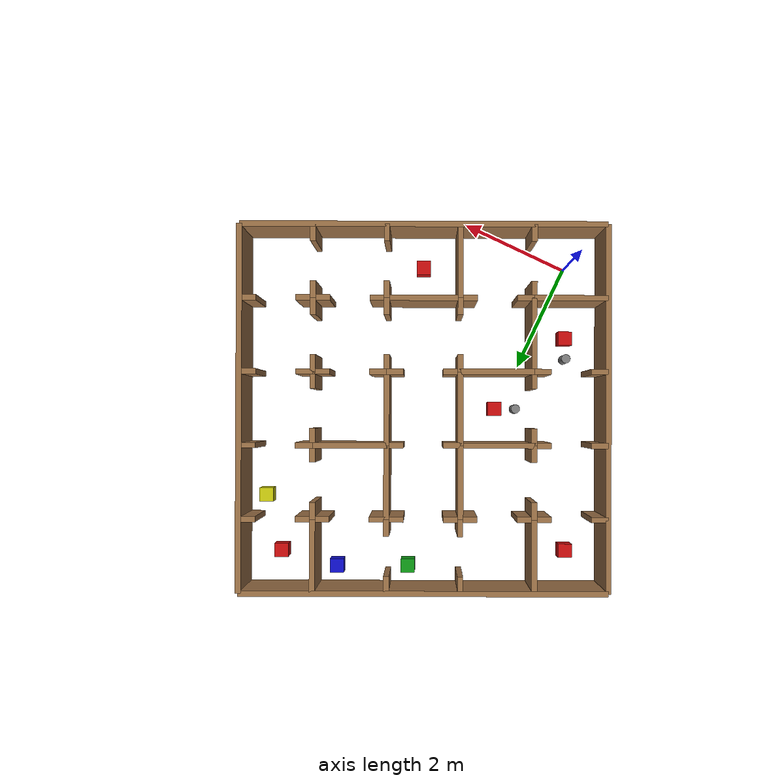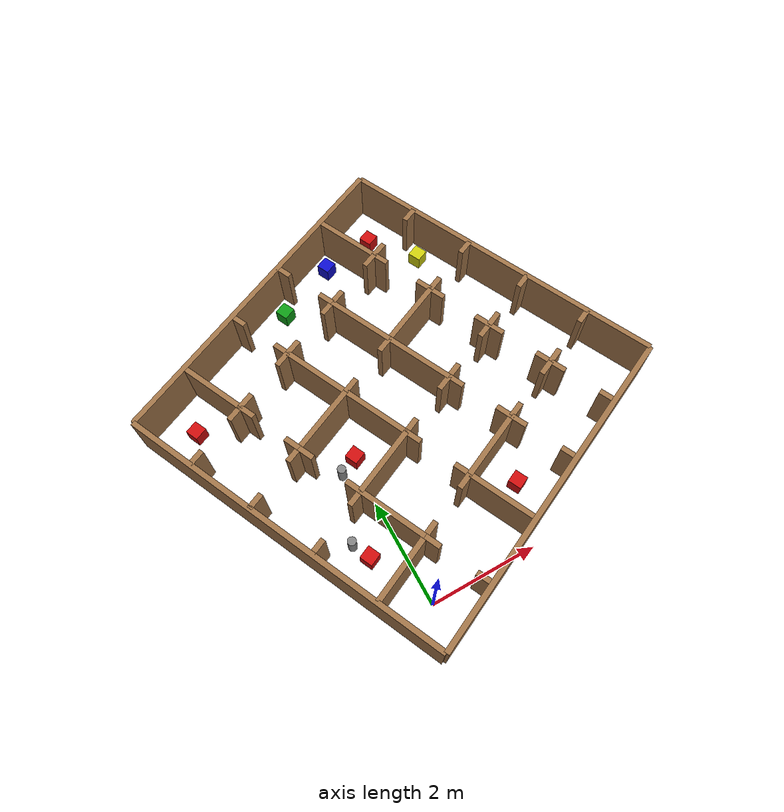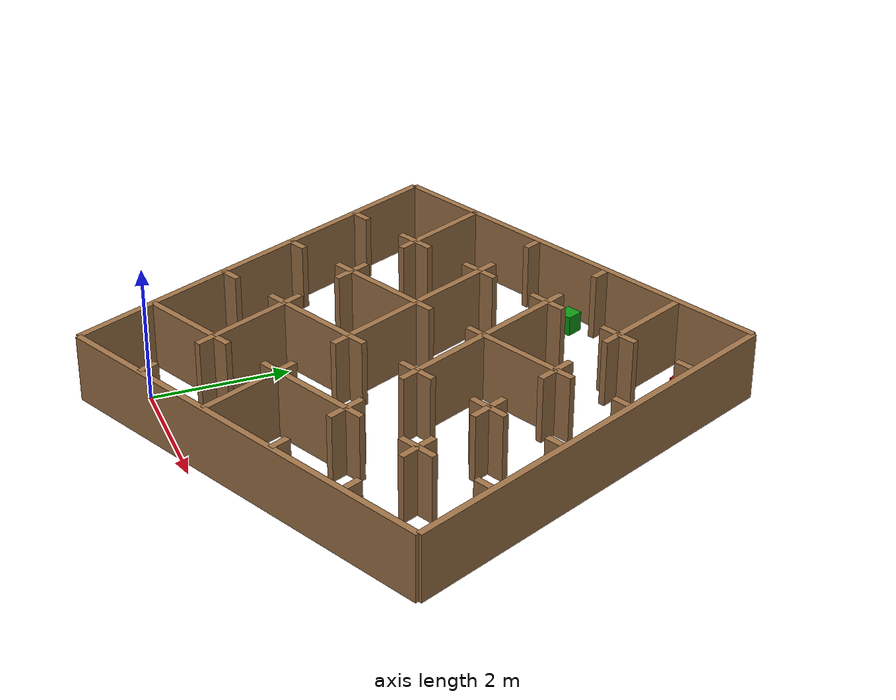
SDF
<sdf version="1.5">
 <world name="tars_nuevo_diagonales">
  <physics type="ode">
   <max_step_size>0.001</max_step_size>
   <real_time_factor>1</real_time_factor>
   <real_time_update_rate>1000</real_time_update_rate>
   <gravity>0 0 -9.8</gravity>
  </physics>
  <plugin filename="gz-sim-physics-system" name="gz::sim::systems::Physics"/>
  <plugin filename="gz-sim-user-commands-system" name="gz::sim::systems::UserCommands"/>
  <plugin filename="gz-sim-scene-broadcaster-system" name="gz::sim::systems::SceneBroadcaster"/>
  <plugin filename="gz-sim-contact-system" name="gz::sim::systems::Contact"/>
  <plugin filename="gz-sim-sensors-system" name="gz::sim::systems::Sensors">
   <render_engine>ogre2</render_engine>
  </plugin>
  <plugin filename="gz-sim-imu-system" name="gz::sim::systems::Imu"/>
  <scene>
   <shadows>false</shadows>
   <ambient>0.2 0.2 0.2 1</ambient>
   <background>1 1 1 1</background>
   <grid>false</grid>
   <origin_visual>false</origin_visual>
  </scene>
  <include><uri>model://sun</uri></include>
  <light name="camera_spot_1_light" type="spot">
   <pose>-6 4 4 0 -1 -0.8</pose>
   <diffuse>0.5 0.5 0.5 1</diffuse>
   <specular>0.1 0.1 0.1 1</specular>
   <direction>0 0 -1</direction>
   <attenuation>
    <range>20</range>
    <constant>0.2</constant>
    <linear>0.01</linear>
    <quadratic>0.001</quadratic>
   </attenuation>
   <cast_shadows>0</cast_shadows>
   <spot><inner_angle>0.6</inner_angle><outer_angle>1</outer_angle><falloff>1</falloff></spot>
  </light>
  <light name="camera_spot_2_light" type="spot">
   <pose>5 -3 4 0 0.8 -0.6</pose>
   <diffuse>0.5 0.5 0.5 1</diffuse>
   <specular>0.1 0.1 0.1 1</specular>
   <direction>0 0 -1</direction>
   <attenuation>
    <range>20</range>
    <constant>0.3</constant>
    <linear>0.01</linear>
    <quadratic>0.001</quadratic>
   </attenuation>
   <cast_shadows>0</cast_shadows>
   <spot><inner_angle>0.6</inner_angle><outer_angle>1</outer_angle><falloff>1</falloff></spot>
  </light>
  <model name="paredes_nuevas">
   <static>true</static>
   <link name="pared_1">
    <pose>2.631102 0.509707 0.5 0.0 0.0 0.436332313</pose>
    <collision name="collision"><geometry><box><size>6.500000000000001 0.1 1.0</size></box></geometry></collision>
    <visual name="visual">
     <geometry><box><size>6.500000000000001 0.1 1.0</size></box></geometry>
     <material><ambient>0.62 0.45 0.28 1</ambient><diffuse>0.62 0.45 0.28 1</diffuse></material>
    </visual>
   </link>
   <link name="pared_2">
    <pose>4.203093 4.828717 0.5 0.0 0.0 2.007128640</pose>
    <collision name="collision"><geometry><box><size>6.500000000000001 0.1 1.0</size></box></geometry></collision>
    <visual name="visual">
     <geometry><box><size>6.500000000000001 0.1 1.0</size></box></geometry>
     <material><ambient>0.62 0.45 0.28 1</ambient><diffuse>0.62 0.45 0.28 1</diffuse></material>
    </visual>
   </link>
   <link name="pared_3">
    <pose>-0.115917 6.400708 0.5 0.0 0.0 3.577924967</pose>
    <collision name="collision"><geometry><box><size>6.500000000000001 0.1 1.0</size></box></geometry></collision>
    <visual name="visual">
     <geometry><box><size>6.500000000000001 0.1 1.0</size></box></geometry>
     <material><ambient>0.62 0.45 0.28 1</ambient><diffuse>0.62 0.45 0.28 1</diffuse></material>
    </visual>
   </link>
   <link name="pared_4">
    <pose>-1.687908 2.081698 0.5 0.0 0.0 -1.134464014</pose>
    <collision name="collision"><geometry><box><size>6.500000000000001 0.1 1.0</size></box></geometry></collision>
    <visual name="visual">
     <geometry><box><size>6.500000000000001 0.1 1.0</size></box></geometry>
     <material><ambient>0.62 0.45 0.28 1</ambient><diffuse>0.62 0.45 0.28 1</diffuse></material>
    </visual>
   </link>
   <link name="pared_5">
    <pose>0.800409 -0.178452 0.5 0.0 0.0 2.007128640</pose>
    <collision name="collision">
     <geometry><box><size>0.30000000000000004 0.1 1.0</size></box></geometry>
    </collision>
    <visual name="visual">
     <geometry><box><size>0.30000000000000004 0.1 1.0</size></box></geometry>
     <material><ambient>0.62 0.45 0.28 1</ambient><diffuse>0.62 0.45 0.28 1</diffuse></material>
    </visual>
   </link>
   <link name="pared_6">
    <pose>0.377791 0.727856 0.5 0.0 0.0 2.007128640</pose>
    <collision name="collision">
     <geometry><box><size>0.30000000000000004 0.1 1.0</size></box></geometry>
    </collision>
    <visual name="visual">
     <geometry><box><size>0.30000000000000004 0.1 1.0</size></box></geometry>
     <material><ambient>0.62 0.45 0.28 1</ambient><diffuse>0.62 0.45 0.28 1</diffuse></material>
    </visual>
   </link>
   <link name="pared_7">
    <pose>-0.274702 0.589100 0.5 0.0 0.0 0.436332313</pose>
    <collision name="collision"><geometry><box><size>1.3 0.1 1.0</size></box></geometry></collision>
    <visual name="visual">
     <geometry><box><size>1.3 0.1 1.0</size></box></geometry>
     <material><ambient>0.62 0.45 0.28 1</ambient><diffuse>0.62 0.45 0.28 1</diffuse></material>
    </visual>
   </link>
   <link name="pared_8">
    <pose>0.039696 1.452902 0.5 0.0 0.0 2.007128640</pose>
    <collision name="collision">
     <geometry><box><size>1.3000000000000003 0.1 1.0</size></box></geometry>
    </collision>
    <visual name="visual">
     <geometry><box><size>1.3000000000000003 0.1 1.0</size></box></geometry>
     <material><ambient>0.62 0.45 0.28 1</ambient><diffuse>0.62 0.45 0.28 1</diffuse></material>
    </visual>
   </link>
   <link name="pared_9">
    <pose>-1.277260 1.555991 0.5 0.0 0.0 0.436332313</pose>
    <collision name="collision">
     <geometry><box><size>0.30000000000000004 0.1 1.0</size></box></geometry>
    </collision>
    <visual name="visual">
     <geometry><box><size>0.30000000000000004 0.1 1.0</size></box></geometry>
     <material><ambient>0.62 0.45 0.28 1</ambient><diffuse>0.62 0.45 0.28 1</diffuse></material>
    </visual>
   </link>
   <link name="pared_10">
    <pose>-0.370952 1.978609 0.5 0.0 0.0 0.436332313</pose>
    <collision name="collision">
     <geometry><box><size>0.30000000000000004 0.1 1.0</size></box></geometry>
    </collision>
    <visual name="visual">
     <geometry><box><size>0.30000000000000004 0.1 1.0</size></box></geometry>
     <material><ambient>0.62 0.45 0.28 1</ambient><diffuse>0.62 0.45 0.28 1</diffuse></material>
    </visual>
   </link>
   <link name="pared_11">
    <pose>-0.298398 2.177948 0.5 0.0 0.0 2.007128640</pose>
    <collision name="collision">
     <geometry><box><size>0.2999999999999998 0.1 1.0</size></box></geometry>
    </collision>
    <visual name="visual">
     <geometry><box><size>0.2999999999999998 0.1 1.0</size></box></geometry>
     <material><ambient>0.62 0.45 0.28 1</ambient><diffuse>0.62 0.45 0.28 1</diffuse></material>
    </visual>
   </link>
   <link name="pared_12">
    <pose>-0.721017 3.084256 0.5 0.0 0.0 2.007128640</pose>
    <collision name="collision">
     <geometry><box><size>0.2999999999999998 0.1 1.0</size></box></geometry>
    </collision>
    <visual name="visual">
     <geometry><box><size>0.2999999999999998 0.1 1.0</size></box></geometry>
     <material><ambient>0.62 0.45 0.28 1</ambient><diffuse>0.62 0.45 0.28 1</diffuse></material>
    </visual>
   </link>
   <link name="pared_13">
    <pose>-1.826663 2.734191 0.5 0.0 0.0 0.436332313</pose>
    <collision name="collision">
     <geometry><box><size>0.30000000000000004 0.1 1.0</size></box></geometry>
    </collision>
    <visual name="visual">
     <geometry><box><size>0.30000000000000004 0.1 1.0</size></box></geometry>
     <material><ambient>0.62 0.45 0.28 1</ambient><diffuse>0.62 0.45 0.28 1</diffuse></material>
    </visual>
   </link>
   <link name="pared_14">
    <pose>-0.920355 3.156809 0.5 0.0 0.0 0.436332313</pose>
    <collision name="collision">
     <geometry><box><size>0.30000000000000004 0.1 1.0</size></box></geometry>
    </collision>
    <visual name="visual">
     <geometry><box><size>0.30000000000000004 0.1 1.0</size></box></geometry>
     <material><ambient>0.62 0.45 0.28 1</ambient><diffuse>0.62 0.45 0.28 1</diffuse></material>
    </visual>
   </link>
   <link name="pared_15">
    <pose>-0.847802 3.356148 0.5 0.0 0.0 2.007128640</pose>
    <collision name="collision">
     <geometry><box><size>0.2999999999999998 0.1 1.0</size></box></geometry>
    </collision>
    <visual name="visual">
     <geometry><box><size>0.2999999999999998 0.1 1.0</size></box></geometry>
     <material><ambient>0.62 0.45 0.28 1</ambient><diffuse>0.62 0.45 0.28 1</diffuse></material>
    </visual>
   </link>
   <link name="pared_16">
    <pose>-1.270420 4.262456 0.5 0.0 0.0 2.007128640</pose>
    <collision name="collision">
     <geometry><box><size>0.3000000000000007 0.1 1.0</size></box></geometry>
    </collision>
    <visual name="visual">
     <geometry><box><size>0.3000000000000007 0.1 1.0</size></box></geometry>
     <material><ambient>0.62 0.45 0.28 1</ambient><diffuse>0.62 0.45 0.28 1</diffuse></material>
    </visual>
   </link>
   <link name="pared_17">
    <pose>-2.376067 3.912391 0.5 0.0 0.0 0.436332313</pose>
    <collision name="collision">
     <geometry><box><size>0.30000000000000004 0.1 1.0</size></box></geometry>
    </collision>
    <visual name="visual">
     <geometry><box><size>0.30000000000000004 0.1 1.0</size></box></geometry>
     <material><ambient>0.62 0.45 0.28 1</ambient><diffuse>0.62 0.45 0.28 1</diffuse></material>
    </visual>
   </link>
   <link name="pared_18">
    <pose>-1.469759 4.335010 0.5 0.0 0.0 0.436332313</pose>
    <collision name="collision">
     <geometry><box><size>0.30000000000000004 0.1 1.0</size></box></geometry>
    </collision>
    <visual name="visual">
     <geometry><box><size>0.30000000000000004 0.1 1.0</size></box></geometry>
     <material><ambient>0.62 0.45 0.28 1</ambient><diffuse>0.62 0.45 0.28 1</diffuse></material>
    </visual>
   </link>
   <link name="pared_19">
    <pose>-1.608515 4.987502 0.5 0.0 0.0 2.007128640</pose>
    <collision name="collision">
     <geometry><box><size>1.3000000000000007 0.1 1.0</size></box></geometry>
    </collision>
    <visual name="visual">
     <geometry><box><size>1.3000000000000007 0.1 1.0</size></box></geometry>
     <material><ambient>0.62 0.45 0.28 1</ambient><diffuse>0.62 0.45 0.28 1</diffuse></material>
    </visual>
   </link>
   <link name="pared_20">
    <pose>1.767300 0.824106 0.5 0.0 0.0 2.007128640</pose>
    <collision name="collision"><geometry><box><size>1.3 0.1 1.0</size></box></geometry></collision>
    <visual name="visual">
     <geometry><box><size>1.3 0.1 1.0</size></box></geometry>
     <material><ambient>0.62 0.45 0.28 1</ambient><diffuse>0.62 0.45 0.28 1</diffuse></material>
    </visual>
   </link>
   <link name="pared_21">
    <pose>0.450344 0.927195 0.5 0.0 0.0 0.436332313</pose>
    <collision name="collision">
     <geometry><box><size>0.30000000000000004 0.1 1.0</size></box></geometry>
    </collision>
    <visual name="visual">
     <geometry><box><size>0.30000000000000004 0.1 1.0</size></box></geometry>
     <material><ambient>0.62 0.45 0.28 1</ambient><diffuse>0.62 0.45 0.28 1</diffuse></material>
    </visual>
   </link>
   <link name="pared_22">
    <pose>1.356652 1.349813 0.5 0.0 0.0 0.436332313</pose>
    <collision name="collision">
     <geometry><box><size>0.30000000000000027 0.1 1.0</size></box></geometry>
    </collision>
    <visual name="visual">
     <geometry><box><size>0.30000000000000027 0.1 1.0</size></box></geometry>
     <material><ambient>0.62 0.45 0.28 1</ambient><diffuse>0.62 0.45 0.28 1</diffuse></material>
    </visual>
   </link>
   <link name="pared_23">
    <pose>1.429206 1.549152 0.5 0.0 0.0 2.007128640</pose>
    <collision name="collision">
     <geometry><box><size>0.30000000000000004 0.1 1.0</size></box></geometry>
    </collision>
    <visual name="visual">
     <geometry><box><size>0.30000000000000004 0.1 1.0</size></box></geometry>
     <material><ambient>0.62 0.45 0.28 1</ambient><diffuse>0.62 0.45 0.28 1</diffuse></material>
    </visual>
   </link>
   <link name="pared_24">
    <pose>1.006587 2.455460 0.5 0.0 0.0 2.007128640</pose>
    <collision name="collision">
     <geometry><box><size>0.30000000000000027 0.1 1.0</size></box></geometry>
    </collision>
    <visual name="visual">
     <geometry><box><size>0.30000000000000027 0.1 1.0</size></box></geometry>
     <material><ambient>0.62 0.45 0.28 1</ambient><diffuse>0.62 0.45 0.28 1</diffuse></material>
    </visual>
   </link>
   <link name="pared_25">
    <pose>0.354095 2.316704 0.5 0.0 0.0 0.436332313</pose>
    <collision name="collision">
     <geometry><box><size>1.3000000000000003 0.1 1.0</size></box></geometry>
    </collision>
    <visual name="visual">
     <geometry><box><size>1.3000000000000003 0.1 1.0</size></box></geometry>
     <material><ambient>0.62 0.45 0.28 1</ambient><diffuse>0.62 0.45 0.28 1</diffuse></material>
    </visual>
   </link>
   <link name="pared_26">
    <pose>0.668493 3.180506 0.5 0.0 0.0 2.007128640</pose>
    <collision name="collision">
     <geometry><box><size>1.2999999999999998 0.1 1.0</size></box></geometry>
    </collision>
    <visual name="visual">
     <geometry><box><size>1.2999999999999998 0.1 1.0</size></box></geometry>
     <material><ambient>0.62 0.45 0.28 1</ambient><diffuse>0.62 0.45 0.28 1</diffuse></material>
    </visual>
   </link>
   <link name="pared_27">
    <pose>-0.195309 3.494904 0.5 0.0 0.0 0.436332313</pose>
    <collision name="collision">
     <geometry><box><size>1.3000000000000003 0.1 1.0</size></box></geometry>
    </collision>
    <visual name="visual">
     <geometry><box><size>1.3000000000000003 0.1 1.0</size></box></geometry>
     <material><ambient>0.62 0.45 0.28 1</ambient><diffuse>0.62 0.45 0.28 1</diffuse></material>
    </visual>
   </link>
   <link name="pared_28">
    <pose>0.119089 4.358706 0.5 0.0 0.0 2.007128640</pose>
    <collision name="collision">
     <geometry><box><size>1.3000000000000003 0.1 1.0</size></box></geometry>
    </collision>
    <visual name="visual">
     <geometry><box><size>1.3000000000000003 0.1 1.0</size></box></geometry>
     <material><ambient>0.62 0.45 0.28 1</ambient><diffuse>0.62 0.45 0.28 1</diffuse></material>
    </visual>
   </link>
   <link name="pared_29">
    <pose>-1.197867 4.461795 0.5 0.0 0.0 0.436332313</pose>
    <collision name="collision">
     <geometry><box><size>0.30000000000000004 0.1 1.0</size></box></geometry>
    </collision>
    <visual name="visual">
     <geometry><box><size>0.30000000000000004 0.1 1.0</size></box></geometry>
     <material><ambient>0.62 0.45 0.28 1</ambient><diffuse>0.62 0.45 0.28 1</diffuse></material>
    </visual>
   </link>
   <link name="pared_30">
    <pose>-0.291559 4.884413 0.5 0.0 0.0 0.436332313</pose>
    <collision name="collision">
     <geometry><box><size>0.30000000000000027 0.1 1.0</size></box></geometry>
    </collision>
    <visual name="visual">
     <geometry><box><size>0.30000000000000027 0.1 1.0</size></box></geometry>
     <material><ambient>0.62 0.45 0.28 1</ambient><diffuse>0.62 0.45 0.28 1</diffuse></material>
    </visual>
   </link>
   <link name="pared_31">
    <pose>-0.219006 5.083752 0.5 0.0 0.0 2.007128640</pose>
    <collision name="collision">
     <geometry><box><size>0.3000000000000007 0.1 1.0</size></box></geometry>
    </collision>
    <visual name="visual">
     <geometry><box><size>0.3000000000000007 0.1 1.0</size></box></geometry>
     <material><ambient>0.62 0.45 0.28 1</ambient><diffuse>0.62 0.45 0.28 1</diffuse></material>
    </visual>
   </link>
   <link name="pared_32">
    <pose>-0.641624 5.990060 0.5 0.0 0.0 2.007128640</pose>
    <collision name="collision">
     <geometry><box><size>0.3000000000000007 0.1 1.0</size></box></geometry>
    </collision>
    <visual name="visual">
     <geometry><box><size>0.3000000000000007 0.1 1.0</size></box></geometry>
     <material><ambient>0.62 0.45 0.28 1</ambient><diffuse>0.62 0.45 0.28 1</diffuse></material>
    </visual>
   </link>
   <link name="pared_33">
    <pose>3.156809 0.920355 0.5 0.0 0.0 2.007128640</pose>
    <collision name="collision">
     <geometry><box><size>0.30000000000000004 0.1 1.0</size></box></geometry>
    </collision>
    <visual name="visual">
     <geometry><box><size>0.30000000000000004 0.1 1.0</size></box></geometry>
     <material><ambient>0.62 0.45 0.28 1</ambient><diffuse>0.62 0.45 0.28 1</diffuse></material>
    </visual>
   </link>
   <link name="pared_34">
    <pose>2.734191 1.826663 0.5 0.0 0.0 2.007128640</pose>
    <collision name="collision">
     <geometry><box><size>0.30000000000000004 0.1 1.0</size></box></geometry>
    </collision>
    <visual name="visual">
     <geometry><box><size>0.30000000000000004 0.1 1.0</size></box></geometry>
     <material><ambient>0.62 0.45 0.28 1</ambient><diffuse>0.62 0.45 0.28 1</diffuse></material>
    </visual>
   </link>
   <link name="pared_35">
    <pose>2.081698 1.687908 0.5 0.0 0.0 0.436332313</pose>
    <collision name="collision">
     <geometry><box><size>1.2999999999999998 0.1 1.0</size></box></geometry>
    </collision>
    <visual name="visual">
     <geometry><box><size>1.2999999999999998 0.1 1.0</size></box></geometry>
     <material><ambient>0.62 0.45 0.28 1</ambient><diffuse>0.62 0.45 0.28 1</diffuse></material>
    </visual>
   </link>
   <link name="pared_36">
    <pose>2.607406 2.098556 0.5 0.0 0.0 2.007128640</pose>
    <collision name="collision">
     <geometry><box><size>0.30000000000000004 0.1 1.0</size></box></geometry>
    </collision>
    <visual name="visual">
     <geometry><box><size>0.30000000000000004 0.1 1.0</size></box></geometry>
     <material><ambient>0.62 0.45 0.28 1</ambient><diffuse>0.62 0.45 0.28 1</diffuse></material>
    </visual>
   </link>
   <link name="pared_37">
    <pose>2.184787 3.004863 0.5 0.0 0.0 2.007128640</pose>
    <collision name="collision">
     <geometry><box><size>0.30000000000000027 0.1 1.0</size></box></geometry>
    </collision>
    <visual name="visual">
     <geometry><box><size>0.30000000000000027 0.1 1.0</size></box></geometry>
     <material><ambient>0.62 0.45 0.28 1</ambient><diffuse>0.62 0.45 0.28 1</diffuse></material>
    </visual>
   </link>
   <link name="pared_38">
    <pose>1.079141 2.654799 0.5 0.0 0.0 0.436332313</pose>
    <collision name="collision">
     <geometry><box><size>0.2999999999999998 0.1 1.0</size></box></geometry>
    </collision>
    <visual name="visual">
     <geometry><box><size>0.2999999999999998 0.1 1.0</size></box></geometry>
     <material><ambient>0.62 0.45 0.28 1</ambient><diffuse>0.62 0.45 0.28 1</diffuse></material>
    </visual>
   </link>
   <link name="pared_39">
    <pose>1.985449 3.077417 0.5 0.0 0.0 0.436332313</pose>
    <collision name="collision">
     <geometry><box><size>0.2999999999999998 0.1 1.0</size></box></geometry>
    </collision>
    <visual name="visual">
     <geometry><box><size>0.2999999999999998 0.1 1.0</size></box></geometry>
     <material><ambient>0.62 0.45 0.28 1</ambient><diffuse>0.62 0.45 0.28 1</diffuse></material>
    </visual>
   </link>
   <link name="pared_40">
    <pose>1.846693 3.729910 0.5 0.0 0.0 2.007128640</pose>
    <collision name="collision">
     <geometry><box><size>1.2999999999999998 0.1 1.0</size></box></geometry>
    </collision>
    <visual name="visual">
     <geometry><box><size>1.2999999999999998 0.1 1.0</size></box></geometry>
     <material><ambient>0.62 0.45 0.28 1</ambient><diffuse>0.62 0.45 0.28 1</diffuse></material>
    </visual>
   </link>
   <link name="pared_41">
    <pose>0.529737 3.832999 0.5 0.0 0.0 0.436332313</pose>
    <collision name="collision">
     <geometry><box><size>0.2999999999999998 0.1 1.0</size></box></geometry>
    </collision>
    <visual name="visual">
     <geometry><box><size>0.2999999999999998 0.1 1.0</size></box></geometry>
     <material><ambient>0.62 0.45 0.28 1</ambient><diffuse>0.62 0.45 0.28 1</diffuse></material>
    </visual>
   </link>
   <link name="pared_42">
    <pose>1.436045 4.255617 0.5 0.0 0.0 0.436332313</pose>
    <collision name="collision">
     <geometry><box><size>0.2999999999999998 0.1 1.0</size></box></geometry>
    </collision>
    <visual name="visual">
     <geometry><box><size>0.2999999999999998 0.1 1.0</size></box></geometry>
     <material><ambient>0.62 0.45 0.28 1</ambient><diffuse>0.62 0.45 0.28 1</diffuse></material>
    </visual>
   </link>
   <link name="pared_43">
    <pose>1.297289 4.908110 0.5 0.0 0.0 2.007128640</pose>
    <collision name="collision">
     <geometry><box><size>1.3000000000000003 0.1 1.0</size></box></geometry>
    </collision>
    <visual name="visual">
     <geometry><box><size>1.3000000000000003 0.1 1.0</size></box></geometry>
     <material><ambient>0.62 0.45 0.28 1</ambient><diffuse>0.62 0.45 0.28 1</diffuse></material>
    </visual>
   </link>
   <link name="pared_44">
    <pose>-0.019667 5.011199 0.5 0.0 0.0 0.436332313</pose>
    <collision name="collision">
     <geometry><box><size>0.2999999999999998 0.1 1.0</size></box></geometry>
    </collision>
    <visual name="visual">
     <geometry><box><size>0.2999999999999998 0.1 1.0</size></box></geometry>
     <material><ambient>0.62 0.45 0.28 1</ambient><diffuse>0.62 0.45 0.28 1</diffuse></material>
    </visual>
   </link>
   <link name="pared_45">
    <pose>0.886641 5.433817 0.5 0.0 0.0 0.436332313</pose>
    <collision name="collision">
     <geometry><box><size>0.2999999999999998 0.1 1.0</size></box></geometry>
    </collision>
    <visual name="visual">
     <geometry><box><size>0.2999999999999998 0.1 1.0</size></box></geometry>
     <material><ambient>0.62 0.45 0.28 1</ambient><diffuse>0.62 0.45 0.28 1</diffuse></material>
    </visual>
   </link>
   <link name="pared_46">
    <pose>0.959194 5.633156 0.5 0.0 0.0 2.007128640</pose>
    <collision name="collision">
     <geometry><box><size>0.3000000000000007 0.1 1.0</size></box></geometry>
    </collision>
    <visual name="visual">
     <geometry><box><size>0.3000000000000007 0.1 1.0</size></box></geometry>
     <material><ambient>0.62 0.45 0.28 1</ambient><diffuse>0.62 0.45 0.28 1</diffuse></material>
    </visual>
   </link>
   <link name="pared_47">
    <pose>0.536576 6.539464 0.5 0.0 0.0 2.007128640</pose>
    <collision name="collision">
     <geometry><box><size>0.3000000000000007 0.1 1.0</size></box></geometry>
    </collision>
    <visual name="visual">
     <geometry><box><size>0.3000000000000007 0.1 1.0</size></box></geometry>
     <material><ambient>0.62 0.45 0.28 1</ambient><diffuse>0.62 0.45 0.28 1</diffuse></material>
    </visual>
   </link>
   <link name="pared_48">
    <pose>4.335010 1.469759 0.5 0.0 0.0 2.007128640</pose>
    <collision name="collision">
     <geometry><box><size>0.30000000000000004 0.1 1.0</size></box></geometry>
    </collision>
    <visual name="visual">
     <geometry><box><size>0.30000000000000004 0.1 1.0</size></box></geometry>
     <material><ambient>0.62 0.45 0.28 1</ambient><diffuse>0.62 0.45 0.28 1</diffuse></material>
    </visual>
   </link>
   <link name="pared_49">
    <pose>3.912391 2.376067 0.5 0.0 0.0 2.007128640</pose>
    <collision name="collision">
     <geometry><box><size>0.30000000000000004 0.1 1.0</size></box></geometry>
    </collision>
    <visual name="visual">
     <geometry><box><size>0.30000000000000004 0.1 1.0</size></box></geometry>
     <material><ambient>0.62 0.45 0.28 1</ambient><diffuse>0.62 0.45 0.28 1</diffuse></material>
    </visual>
   </link>
   <link name="pared_50">
    <pose>2.806745 2.026002 0.5 0.0 0.0 0.436332313</pose>
    <collision name="collision">
     <geometry><box><size>0.2999999999999998 0.1 1.0</size></box></geometry>
    </collision>
    <visual name="visual">
     <geometry><box><size>0.2999999999999998 0.1 1.0</size></box></geometry>
     <material><ambient>0.62 0.45 0.28 1</ambient><diffuse>0.62 0.45 0.28 1</diffuse></material>
    </visual>
   </link>
   <link name="pared_51">
    <pose>3.713052 2.448620 0.5 0.0 0.0 0.436332313</pose>
    <collision name="collision">
     <geometry><box><size>0.3000000000000007 0.1 1.0</size></box></geometry>
    </collision>
    <visual name="visual">
     <geometry><box><size>0.3000000000000007 0.1 1.0</size></box></geometry>
     <material><ambient>0.62 0.45 0.28 1</ambient><diffuse>0.62 0.45 0.28 1</diffuse></material>
    </visual>
   </link>
   <link name="pared_52">
    <pose>3.785606 2.647959 0.5 0.0 0.0 2.007128640</pose>
    <collision name="collision">
     <geometry><box><size>0.30000000000000004 0.1 1.0</size></box></geometry>
    </collision>
    <visual name="visual">
     <geometry><box><size>0.30000000000000004 0.1 1.0</size></box></geometry>
     <material><ambient>0.62 0.45 0.28 1</ambient><diffuse>0.62 0.45 0.28 1</diffuse></material>
    </visual>
   </link>
   <link name="pared_53">
    <pose>3.362988 3.554267 0.5 0.0 0.0 2.007128640</pose>
    <collision name="collision">
     <geometry><box><size>0.30000000000000027 0.1 1.0</size></box></geometry>
    </collision>
    <visual name="visual">
     <geometry><box><size>0.30000000000000027 0.1 1.0</size></box></geometry>
     <material><ambient>0.62 0.45 0.28 1</ambient><diffuse>0.62 0.45 0.28 1</diffuse></material>
    </visual>
   </link>
   <link name="pared_54">
    <pose>2.257341 3.204202 0.5 0.0 0.0 0.436332313</pose>
    <collision name="collision">
     <geometry><box><size>0.2999999999999998 0.1 1.0</size></box></geometry>
    </collision>
    <visual name="visual">
     <geometry><box><size>0.2999999999999998 0.1 1.0</size></box></geometry>
     <material><ambient>0.62 0.45 0.28 1</ambient><diffuse>0.62 0.45 0.28 1</diffuse></material>
    </visual>
   </link>
   <link name="pared_55">
    <pose>3.163649 3.626821 0.5 0.0 0.0 0.436332313</pose>
    <collision name="collision">
     <geometry><box><size>0.3000000000000007 0.1 1.0</size></box></geometry>
    </collision>
    <visual name="visual">
     <geometry><box><size>0.3000000000000007 0.1 1.0</size></box></geometry>
     <material><ambient>0.62 0.45 0.28 1</ambient><diffuse>0.62 0.45 0.28 1</diffuse></material>
    </visual>
   </link>
   <link name="pared_56">
    <pose>3.236202 3.826159 0.5 0.0 0.0 2.007128640</pose>
    <collision name="collision">
     <geometry><box><size>0.2999999999999998 0.1 1.0</size></box></geometry>
    </collision>
    <visual name="visual">
     <geometry><box><size>0.2999999999999998 0.1 1.0</size></box></geometry>
     <material><ambient>0.62 0.45 0.28 1</ambient><diffuse>0.62 0.45 0.28 1</diffuse></material>
    </visual>
   </link>
   <link name="pared_57">
    <pose>2.813584 4.732467 0.5 0.0 0.0 2.007128640</pose>
    <collision name="collision">
     <geometry><box><size>0.2999999999999998 0.1 1.0</size></box></geometry>
    </collision>
    <visual name="visual">
     <geometry><box><size>0.2999999999999998 0.1 1.0</size></box></geometry>
     <material><ambient>0.62 0.45 0.28 1</ambient><diffuse>0.62 0.45 0.28 1</diffuse></material>
    </visual>
   </link>
   <link name="pared_58">
    <pose>2.161091 4.593712 0.5 0.0 0.0 0.436332313</pose>
    <collision name="collision">
     <geometry><box><size>1.3000000000000003 0.1 1.0</size></box></geometry>
    </collision>
    <visual name="visual">
     <geometry><box><size>1.3000000000000003 0.1 1.0</size></box></geometry>
     <material><ambient>0.62 0.45 0.28 1</ambient><diffuse>0.62 0.45 0.28 1</diffuse></material>
    </visual>
   </link>
   <link name="pared_59">
    <pose>2.686798 5.004360 0.5 0.0 0.0 2.007128640</pose>
    <collision name="collision">
     <geometry><box><size>0.2999999999999998 0.1 1.0</size></box></geometry>
    </collision>
    <visual name="visual">
     <geometry><box><size>0.2999999999999998 0.1 1.0</size></box></geometry>
     <material><ambient>0.62 0.45 0.28 1</ambient><diffuse>0.62 0.45 0.28 1</diffuse></material>
    </visual>
   </link>
   <link name="pared_60">
    <pose>2.264180 5.910667 0.5 0.0 0.0 2.007128640</pose>
    <collision name="collision">
     <geometry><box><size>0.3000000000000007 0.1 1.0</size></box></geometry>
    </collision>
    <visual name="visual">
     <geometry><box><size>0.3000000000000007 0.1 1.0</size></box></geometry>
     <material><ambient>0.62 0.45 0.28 1</ambient><diffuse>0.62 0.45 0.28 1</diffuse></material>
    </visual>
   </link>
   <link name="pared_61">
    <pose>1.158533 5.560603 0.5 0.0 0.0 0.436332313</pose>
    <collision name="collision">
     <geometry><box><size>0.2999999999999998 0.1 1.0</size></box></geometry>
    </collision>
    <visual name="visual">
     <geometry><box><size>0.2999999999999998 0.1 1.0</size></box></geometry>
     <material><ambient>0.62 0.45 0.28 1</ambient><diffuse>0.62 0.45 0.28 1</diffuse></material>
    </visual>
   </link>
   <link name="pared_62">
    <pose>2.064841 5.983221 0.5 0.0 0.0 0.436332313</pose>
    <collision name="collision">
     <geometry><box><size>0.3000000000000007 0.1 1.0</size></box></geometry>
    </collision>
    <visual name="visual">
     <geometry><box><size>0.3000000000000007 0.1 1.0</size></box></geometry>
     <material><ambient>0.62 0.45 0.28 1</ambient><diffuse>0.62 0.45 0.28 1</diffuse></material>
    </visual>
   </link>
   <link name="pared_63">
    <pose>1.926085 6.635714 0.5 0.0 0.0 2.007128640</pose>
    <collision name="collision">
     <geometry><box><size>1.3000000000000007 0.1 1.0</size></box></geometry>
    </collision>
    <visual name="visual">
     <geometry><box><size>1.3000000000000007 0.1 1.0</size></box></geometry>
     <material><ambient>0.62 0.45 0.28 1</ambient><diffuse>0.62 0.45 0.28 1</diffuse></material>
    </visual>
   </link>
   <link name="pared_64">
    <pose>3.984945 2.575406 0.5 0.0 0.0 0.436332313</pose>
    <collision name="collision">
     <geometry><box><size>0.3000000000000007 0.1 1.0</size></box></geometry>
    </collision>
    <visual name="visual">
     <geometry><box><size>0.3000000000000007 0.1 1.0</size></box></geometry>
     <material><ambient>0.62 0.45 0.28 1</ambient><diffuse>0.62 0.45 0.28 1</diffuse></material>
    </visual>
   </link>
   <link name="pared_65">
    <pose>4.891253 2.998024 0.5 0.0 0.0 0.436332313</pose>
    <collision name="collision">
     <geometry><box><size>0.3000000000000007 0.1 1.0</size></box></geometry>
    </collision>
    <visual name="visual">
     <geometry><box><size>0.3000000000000007 0.1 1.0</size></box></geometry>
     <material><ambient>0.62 0.45 0.28 1</ambient><diffuse>0.62 0.45 0.28 1</diffuse></material>
    </visual>
   </link>
   <link name="pared_66">
    <pose>3.435541 3.753606 0.5 0.0 0.0 0.436332313</pose>
    <collision name="collision">
     <geometry><box><size>0.3000000000000007 0.1 1.0</size></box></geometry>
    </collision>
    <visual name="visual">
     <geometry><box><size>0.3000000000000007 0.1 1.0</size></box></geometry>
     <material><ambient>0.62 0.45 0.28 1</ambient><diffuse>0.62 0.45 0.28 1</diffuse></material>
    </visual>
   </link>
   <link name="pared_67">
    <pose>4.341849 4.176224 0.5 0.0 0.0 0.436332313</pose>
    <collision name="collision">
     <geometry><box><size>0.3000000000000007 0.1 1.0</size></box></geometry>
    </collision>
    <visual name="visual">
     <geometry><box><size>0.3000000000000007 0.1 1.0</size></box></geometry>
     <material><ambient>0.62 0.45 0.28 1</ambient><diffuse>0.62 0.45 0.28 1</diffuse></material>
    </visual>
   </link>
   <link name="pared_68">
    <pose>2.886137 4.931806 0.5 0.0 0.0 0.436332313</pose>
    <collision name="collision">
     <geometry><box><size>0.3000000000000007 0.1 1.0</size></box></geometry>
    </collision>
    <visual name="visual">
     <geometry><box><size>0.3000000000000007 0.1 1.0</size></box></geometry>
     <material><ambient>0.62 0.45 0.28 1</ambient><diffuse>0.62 0.45 0.28 1</diffuse></material>
    </visual>
   </link>
   <link name="pared_69">
    <pose>3.792445 5.354424 0.5 0.0 0.0 0.436332313</pose>
    <collision name="collision">
     <geometry><box><size>0.3000000000000007 0.1 1.0</size></box></geometry>
    </collision>
    <visual name="visual">
     <geometry><box><size>0.3000000000000007 0.1 1.0</size></box></geometry>
     <material><ambient>0.62 0.45 0.28 1</ambient><diffuse>0.62 0.45 0.28 1</diffuse></material>
    </visual>
   </link>
   <link name="pared_70">
    <pose>2.336734 6.110006 0.5 0.0 0.0 0.436332313</pose>
    <collision name="collision">
     <geometry><box><size>0.3000000000000007 0.1 1.0</size></box></geometry>
    </collision>
    <visual name="visual">
     <geometry><box><size>0.3000000000000007 0.1 1.0</size></box></geometry>
     <material><ambient>0.62 0.45 0.28 1</ambient><diffuse>0.62 0.45 0.28 1</diffuse></material>
    </visual>
   </link>
   <link name="pared_71">
    <pose>3.243041 6.532625 0.5 0.0 0.0 0.436332313</pose>
    <collision name="collision">
     <geometry><box><size>0.3000000000000007 0.1 1.0</size></box></geometry>
    </collision>
    <visual name="visual">
     <geometry><box><size>0.3000000000000007 0.1 1.0</size></box></geometry>
     <material><ambient>0.62 0.45 0.28 1</ambient><diffuse>0.62 0.45 0.28 1</diffuse></material>
    </visual>
   </link>
  </model>
  <model name="senuelo_obstaculos">
   <static>true</static>
   <link name="senuelo_oclusor_1">
    <pose>-0.709999 1.522597 0.2 0.0 0.0 0.436332313</pose>
    <collision name="collision">
     <geometry><cylinder><radius>0.08</radius><length>0.4</length></cylinder></geometry>
    </collision>
    <visual name="visual">
     <geometry><cylinder><radius>0.08</radius><length>0.4</length></cylinder></geometry>
     <material><ambient>0.50 0.50 0.50 1</ambient><diffuse>0.50 0.50 0.50 1</diffuse></material>
    </visual>
   </link>
   <link name="senuelo_oclusor_2">
    <pose>-0.265004 2.745209 0.2 0.0 0.0 0.436332313</pose>
    <collision name="collision">
     <geometry><cylinder><radius>0.08</radius><length>0.4</length></cylinder></geometry>
    </collision>
    <visual name="visual">
     <geometry><cylinder><radius>0.08</radius><length>0.4</length></cylinder></geometry>
     <material><ambient>0.50 0.50 0.50 1</ambient><diffuse>0.50 0.50 0.50 1</diffuse></material>
    </visual>
   </link>
  </model>
  <model name="marcas_color">
   <static>true</static>
   <link name="cuadrado_rojo_1">
    <pose>-0.549404 1.178200 0.15 0.0 0.0 0.436332313</pose>
    <collision name="collision"><geometry><box><size>0.25 0.25 0.3</size></box></geometry></collision>
    <visual name="visual">
     <geometry><box><size>0.25 0.25 0.3</size></box></geometry>
     <material>
      <ambient>0.8 0.05 0.05 1</ambient>
      <diffuse>0.8 0.05 0.05 1</diffuse>
      <specular>0.1 0.1 0.1 1</specular>
     </material>
    </visual>
   </link>
   <link name="cuadrado_rojo_2">
    <pose>0.079393 2.905804 0.15 0.0 0.0 0.436332313</pose>
    <collision name="collision"><geometry><box><size>0.25 0.25 0.3</size></box></geometry></collision>
    <visual name="visual">
     <geometry><box><size>0.25 0.25 0.3</size></box></geometry>
     <material>
      <ambient>0.8 0.05 0.05 1</ambient>
      <diffuse>0.8 0.05 0.05 1</diffuse>
      <specular>0.1 0.1 0.1 1</specular>
     </material>
    </visual>
   </link>
   <link name="cuadrado_rojo_3">
    <pose>-2.197615 4.712800 0.15 0.0 0.0 0.436332313</pose>
    <collision name="collision"><geometry><box><size>0.25 0.25 0.3</size></box></geometry></collision>
    <visual name="visual">
     <geometry><box><size>0.25 0.25 0.3</size></box></geometry>
     <material>
      <ambient>0.8 0.05 0.05 1</ambient>
      <diffuse>0.8 0.05 0.05 1</diffuse>
      <specular>0.1 0.1 0.1 1</specular>
     </material>
    </visual>
   </link>
   <link name="cuadrado_rojo_4">
    <pose>2.515186 6.910415 0.15 0.0 0.0 0.436332313</pose>
    <collision name="collision"><geometry><box><size>0.25 0.25 0.3</size></box></geometry></collision>
    <visual name="visual">
     <geometry><box><size>0.25 0.25 0.3</size></box></geometry>
     <material>
      <ambient>0.8 0.05 0.05 1</ambient>
      <diffuse>0.8 0.05 0.05 1</diffuse>
      <specular>0.1 0.1 0.1 1</specular>
     </material>
    </visual>
   </link>
   <link name="cuadrado_rojo_5">
    <pose>2.356400 1.098807 0.15 0.0 0.0 0.436332313</pose>
    <collision name="collision"><geometry><box><size>0.25 0.25 0.3</size></box></geometry></collision>
    <visual name="visual">
     <geometry><box><size>0.25 0.25 0.3</size></box></geometry>
     <material>
      <ambient>0.8 0.05 0.05 1</ambient>
      <diffuse>0.8 0.05 0.05 1</diffuse>
      <specular>0.1 0.1 0.1 1</specular>
     </material>
    </visual>
   </link>
   <link name="cuadrado_azul_1">
    <pose>1.472418 6.733111 0.15 0.0 0.0 0.436332313</pose>
    <collision name="collision"><geometry><box><size>0.25 0.25 0.3</size></box></geometry></collision>
    <visual name="visual">
     <geometry><box><size>0.25 0.25 0.3</size></box></geometry>
     <material><ambient>0.05 0.05 0.8 1</ambient><diffuse>0.05 0.05 0.8 1</diffuse></material>
    </visual>
   </link>
   <link name="cuadrado_amarillo_2">
    <pose>3.200022 6.104315 0.15 0.0 0.0 0.436332313</pose>
    <collision name="collision"><geometry><box><size>0.25 0.25 0.3</size></box></geometry></collision>
    <visual name="visual">
     <geometry><box><size>0.25 0.25 0.3</size></box></geometry>
     <material><ambient>0.8 0.8 0.05 1</ambient><diffuse>0.8 0.8 0.05 1</diffuse></material>
    </visual>
   </link>
   <link name="cuadrado_verde_3">
    <pose>0.294218 6.183707 0.15 0.0 0.0 0.436332313</pose>
    <collision name="collision"><geometry><box><size>0.25 0.25 0.3</size></box></geometry></collision>
    <visual name="visual">
     <geometry><box><size>0.25 0.25 0.3</size></box></geometry>
     <material><ambient>0.05 0.6 0.08 1</ambient><diffuse>0.05 0.6 0.08 1</diffuse></material>
    </visual>
   </link>
  </model>
 </world>
</sdf>
